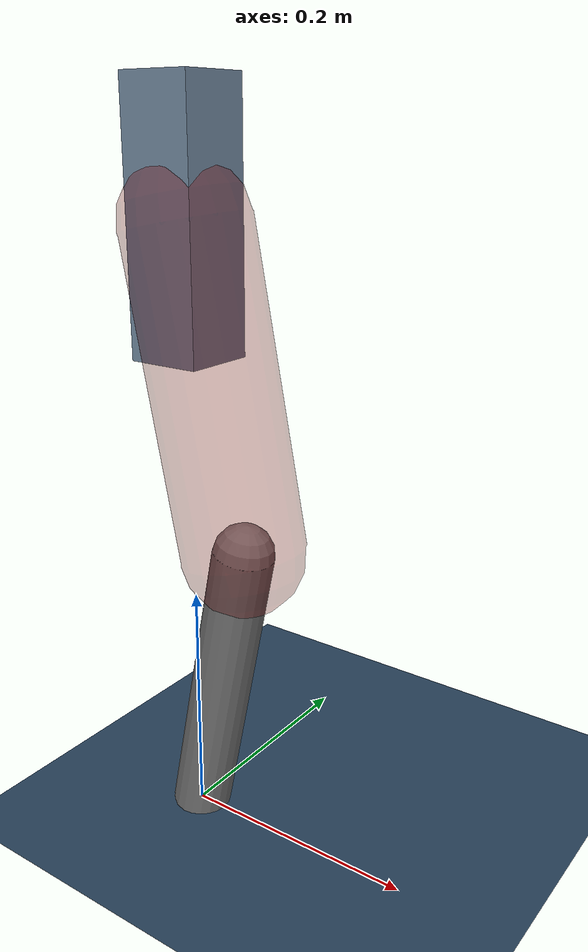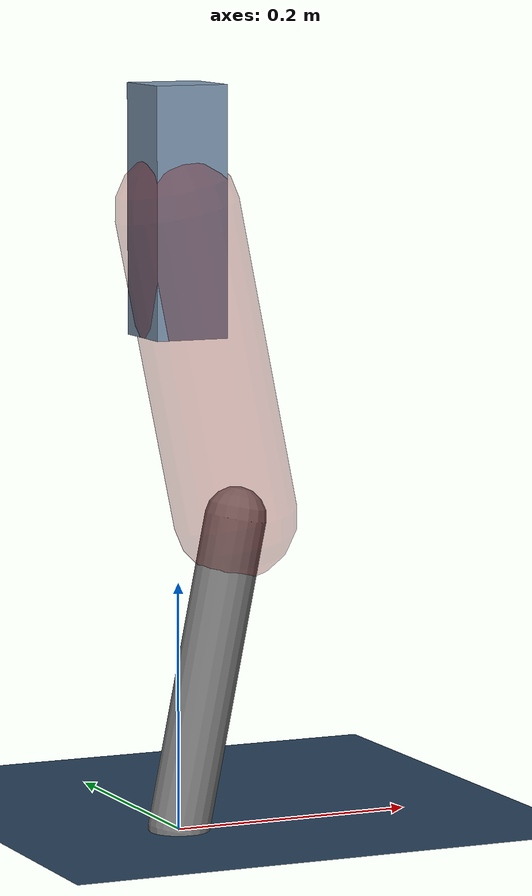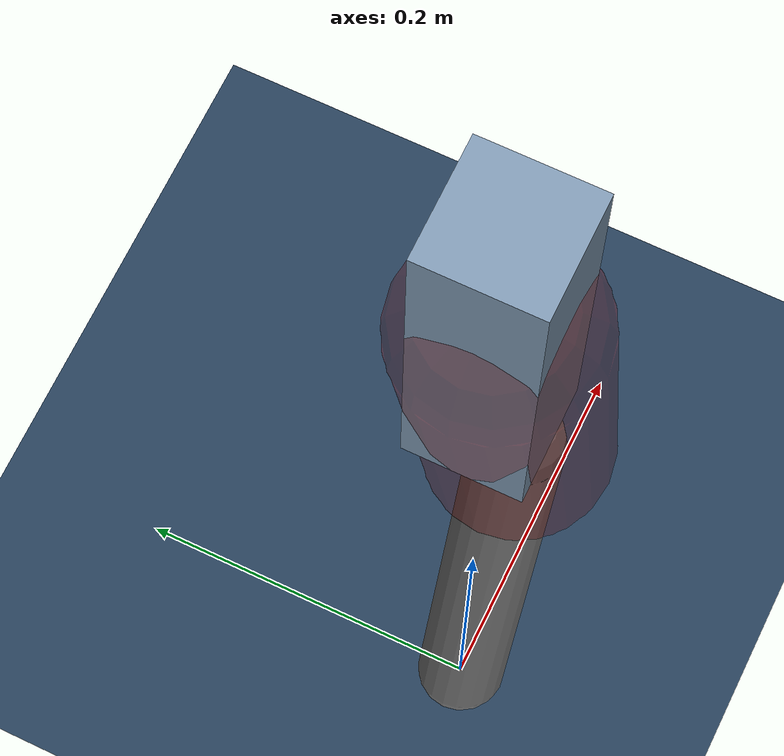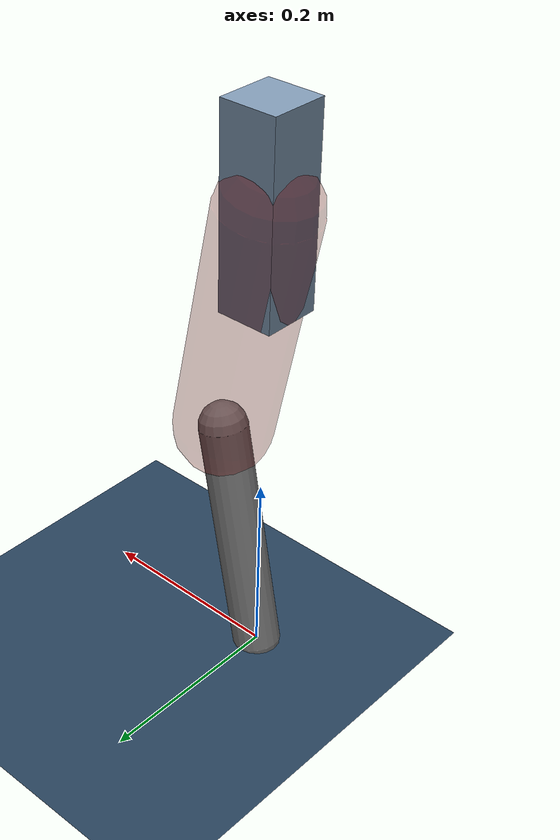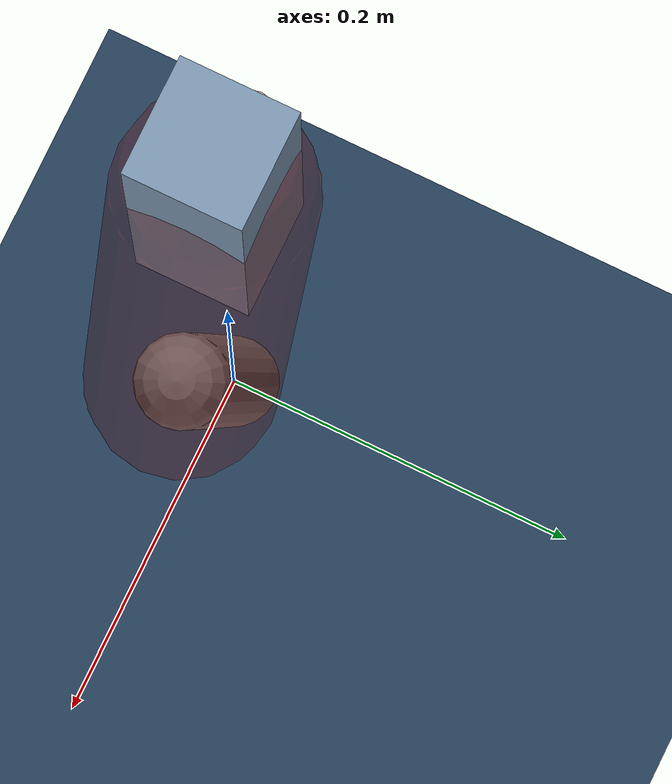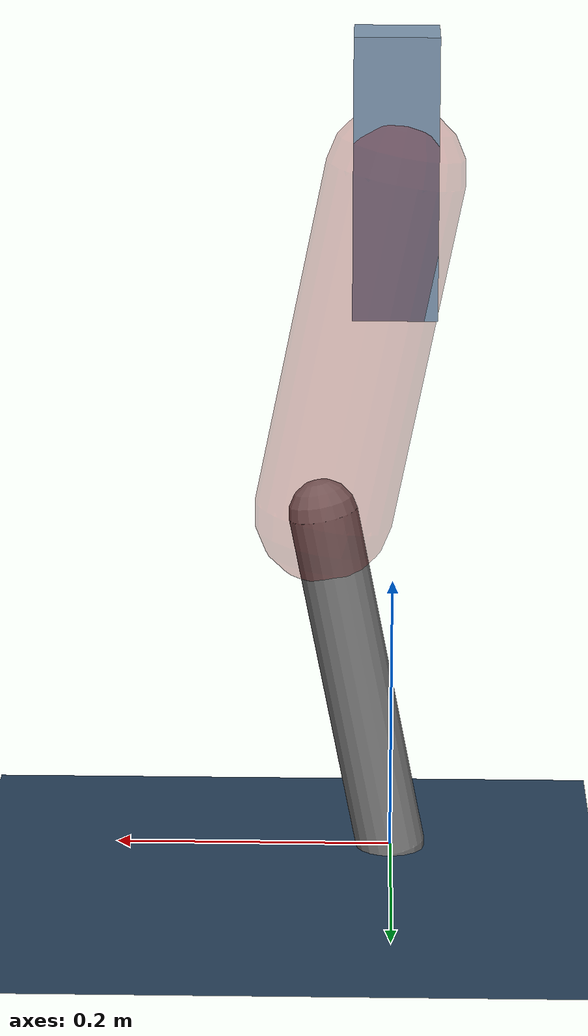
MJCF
<mujoco model="Hopper2D">
	<compiler inertiafromgeom="true" angle="radian" />
	<option timestep="0.001" integrator="implicit" cone="elliptic" solver="Newton" tolerance="1e-10" />

	<default>
		<geom contype="1" conaffinity="1" condim="3" friction="2 0.005 0.0001" solref="0.005 1" />
		<joint limited="true" damping="0.1" />
	</default>

	<asset>
		<texture name="skybox" type="skybox" builtin="gradient" rgb1=".4 .6 .8" rgb2="0 0 0" width="800" height="800" />
		<texture name="grid" type="2d" builtin="checker" rgb1=".1 .2 .3" rgb2=".2 .3 .4" width="300" height="300" mark="edge" markrgb=".2 .3 .4" />
		<material name="ground" texture="grid" texrepeat="1 1" texuniform="true" reflectance="0.1" />
		<material name="leg" rgba="0.5 0.6 0.7 1" />
	</asset>

	<worldbody>

		<geom name="floor" type="plane" size="5 5 0.25" material="ground" />

		<light directional="false" diffuse="0.8 0.8 0.8" specular="0.3 0.3 0.3" pos="0 0 2" dir="0 0 -1" />
		<light mode="targetbodycom" target="base" directional="false" diffuse="0.8 0.8 0.8" specular="0.3 0.3 0.3" pos="0 0 2" dir="0 0 -1" />

		<camera name="fixed" pos="0 -2 1" xyaxes="1 0 0 0 0 1" />
		<camera name="tracking" mode="trackcom" pos="0 -3 1" />

		<body name="root" pos="0 0 0.49842075402789876">
			<joint name="slide_x" type="slide" axis="1 0 0" range="-100 100" />
			<joint name="slide_z" type="slide" axis="0 0 1" range="0 10" />

			<body name="base" pos="0 0 0">
				<geom name="torso" type="box" size="0.03 0.03 0.1" mass="1.758" material="leg" />

				<body name="link1" pos="0 0 0" euler="0 1.3711946324358215 0">
					<joint type="hinge" axis="0 -1 0" pos="0 0 0" name="hinge1" limited="true" range="-3.14 3.14" stiffness="0" damping="0.1" />
					<geom name="thigh" type="capsule" fromto="0 0 0 0.25302828162309593 0 0" size="0.05" rgba="0.5 0 0 0.3" mass="0.8642735322200494" />

					<body name="link2" pos="0.25302828162309593 0 0" euler="0 0.39733107576593 0">
						<joint type="hinge" axis="0 -1 0" pos="0 0 0" name="hinge2" limited="true" range="-3.14 3.14" stiffness="0" damping="0.1" />
						<geom name="shank" type="capsule" fromto="0 0 0 0.25539247240480284 0 0" size="0.025" mass="0.44695322516432257" />

					</body>
				</body>
			</body>
		</body>
	</worldbody>

	<actuator>
		<motor name="torque1" joint="hinge1" ctrlrange="-57.06443689312376 57.06443689312376" ctrllimited="true" gear="1" />
		<motor name="torque2" joint="hinge2" ctrlrange="-56.65029212714468 56.65029212714468" ctrllimited="true" gear="1" />
	</actuator>
</mujoco>
